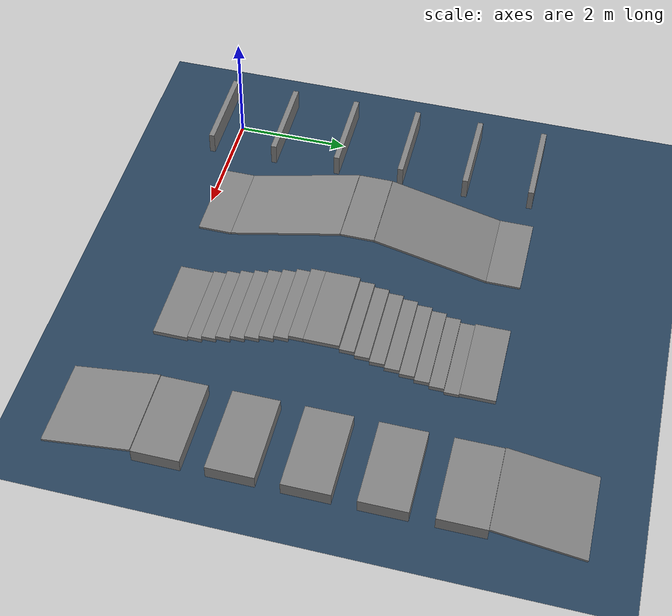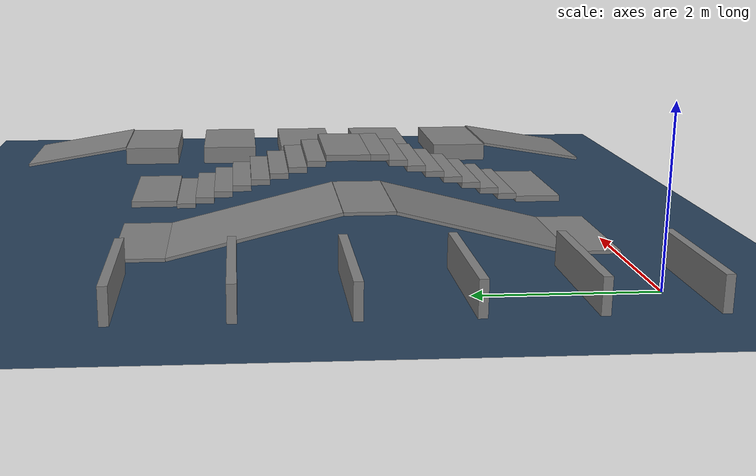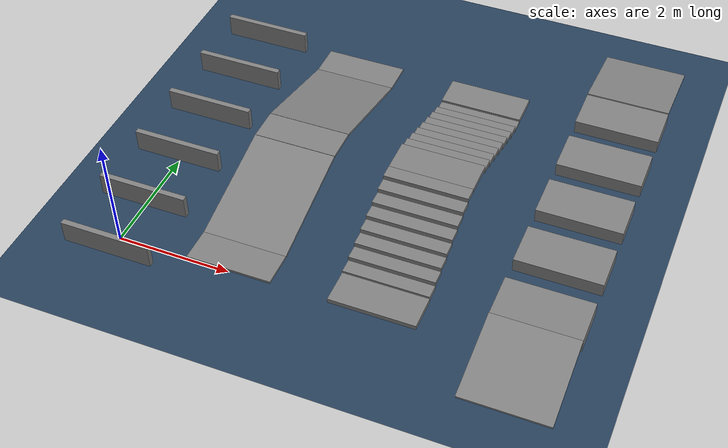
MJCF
<?xml version='1.0' encoding='utf-8'?>
<mujoco model="ares scene">
  <statistic center="0 0 0.1" extent="0.8" />
  <visual>
    <headlight diffuse="0.6 0.6 0.6" ambient="0.3 0.3 0.3" specular="0 0 0" />
    <rgba haze="0.15 0.25 0.35 1" />
    <global azimuth="-130" elevation="-20" />
  </visual>
  <asset>
    <texture type="skybox" builtin="gradient" rgb1="0.3 0.5 0.7" rgb2="0 0 0" width="512" height="3072" />
    <texture type="2d" name="groundplane" builtin="checker" mark="edge" rgb1="0.2 0.3 0.4" rgb2="0.1 0.2 0.3" markrgb="0.8 0.8 0.8" width="300" height="300" />
    <material name="groundplane" texture="groundplane" texuniform="true" texrepeat="5 5" reflectance="0.2" />
  </asset>
  <worldbody>
    <light pos="0 0 1.5" dir="0 0 -1" directional="true" />
    <geom name="floor" size="0 0 0.05" type="plane" material="groundplane" />
    <geom pos="0.0 -0.34999999999999964 0.25" type="box" size="0.8 0.05 0.2" quat="1.0 0.0 0.0 0.0" />
    <geom pos="0.0 0.8500000000000003 0.25" type="box" size="0.8 0.05 0.2" quat="1.0 0.0 0.0 0.0" />
    <geom pos="0.0 2.0500000000000003 0.25" type="box" size="0.8 0.05 0.2" quat="1.0 0.0 0.0 0.0" />
    <geom pos="0.0 3.25 0.25" type="box" size="0.8 0.05 0.2" quat="1.0 0.0 0.0 0.0" />
    <geom pos="0.0 4.45 0.25" type="box" size="0.8 0.05 0.2" quat="1.0 0.0 0.0 0.0" />
    <geom pos="0.0 5.65 0.25" type="box" size="0.8 0.05 0.2" quat="1.0 0.0 0.0 0.0" />
    <geom pos="2.0 0.3 0.05" type="box" size="0.75 0.3 0.02" quat="1.0 0.0 0.0 0.0" />
    <geom pos="2.0 1.6 0.3" type="box" size="0.75 1.0307764064044151 0.02" quat="0.992507556682903 0.12218326369570447 0.0 0.0" />
    <geom pos="2.0 2.9 0.55" type="box" size="0.75 0.3 0.02" quat="1.0 0.0 0.0 0.0" />
    <geom pos="2.0 4.2 0.3" type="box" size="0.75 1.0307764064044151 0.02" quat="0.992507556682903 -0.12218326369570447 0.0 0.0" />
    <geom pos="2.0 5.5 0.05" type="box" size="0.75 0.3 0.02" quat="1.0 0.0 0.0 0.0" />
    <geom pos="4.5 0.3 0.05" type="box" size="0.75 0.3 0.04" quat="1.0 0.0 0.0 0.0" />
    <geom pos="4.5 0.725 0.09" type="box" size="0.75 0.125 0.04" quat="1.0 0.0 0.0 0.0" />
    <geom pos="4.5 0.975 0.16999999999999998" type="box" size="0.75 0.125 0.04" quat="1.0 0.0 0.0 0.0" />
    <geom pos="4.5 1.225 0.25" type="box" size="0.75 0.125 0.04" quat="1.0 0.0 0.0 0.0" />
    <geom pos="4.5 1.475 0.33" type="box" size="0.75 0.125 0.04" quat="1.0 0.0 0.0 0.0" />
    <geom pos="4.5 1.725 0.41" type="box" size="0.75 0.125 0.04" quat="1.0 0.0 0.0 0.0" />
    <geom pos="4.5 1.975 0.49" type="box" size="0.75 0.125 0.04" quat="1.0 0.0 0.0 0.0" />
    <geom pos="4.5 2.225 0.5700000000000001" type="box" size="0.75 0.125 0.04" quat="1.0 0.0 0.0 0.0" />
    <geom pos="4.5 2.475 0.65" type="box" size="0.75 0.125 0.04" quat="1.0 0.0 0.0 0.0" />
    <geom pos="4.5 2.9 0.65" type="box" size="0.75 0.3 0.04" quat="1.0 0.0 0.0 0.0" />
    <geom pos="4.5 3.325 0.5700000000000001" type="box" size="0.75 0.125 0.04" quat="1.0 0.0 0.0 0.0" />
    <geom pos="4.5 3.575 0.49000000000000005" type="box" size="0.75 0.125 0.04" quat="1.0 0.0 0.0 0.0" />
    <geom pos="4.5 3.825 0.41000000000000003" type="box" size="0.75 0.125 0.04" quat="1.0 0.0 0.0 0.0" />
    <geom pos="4.5 4.075 0.33000000000000007" type="box" size="0.75 0.125 0.04" quat="1.0 0.0 0.0 0.0" />
    <geom pos="4.5 4.325 0.25000000000000006" type="box" size="0.75 0.125 0.04" quat="1.0 0.0 0.0 0.0" />
    <geom pos="4.5 4.575 0.17000000000000004" type="box" size="0.75 0.125 0.04" quat="1.0 0.0 0.0 0.0" />
    <geom pos="4.5 4.825 0.09000000000000008" type="box" size="0.75 0.125 0.04" quat="1.0 0.0 0.0 0.0" />
    <geom pos="4.5 5.075 0.010000000000000009" type="box" size="0.75 0.125 0.04" quat="1.0 0.0 0.0 0.0" />
    <geom pos="4.5 5.5 0.05" type="box" size="0.75 0.3 0.04" quat="1.0 0.0 0.0 0.0" />
    <geom pos="7.0 -0.25 0.175" type="box" size="0.75 0.7603453162872774 0.02" quat="0.9965926760297167 0.08248053154489327 0.0 0.0" />
    <geom pos="7.0 0.9 0.175" type="box" size="0.75 0.4 0.125" quat="1.0 0.0 0.0 0.0" />
    <geom pos="7.0 2.1 0.175" type="box" size="0.75 0.4 0.125" quat="1.0 0.0 0.0 0.0" />
    <geom pos="7.0 3.3000000000000003 0.175" type="box" size="0.75 0.4 0.125" quat="1.0 0.0 0.0 0.0" />
    <geom pos="7.0 4.500000000000001 0.175" type="box" size="0.75 0.4 0.125" quat="1.0 0.0 0.0 0.0" />
    <geom pos="7.0 5.700000000000001 0.175" type="box" size="0.75 0.4 0.125" quat="1.0 0.0 0.0 0.0" />
    <geom pos="7.0 6.8500000000000005 0.175" type="box" size="0.75 0.7603453162872774 0.02" quat="0.9965926760297167 -0.08248053154489327 0.0 0.0" />
  </worldbody>
</mujoco>
